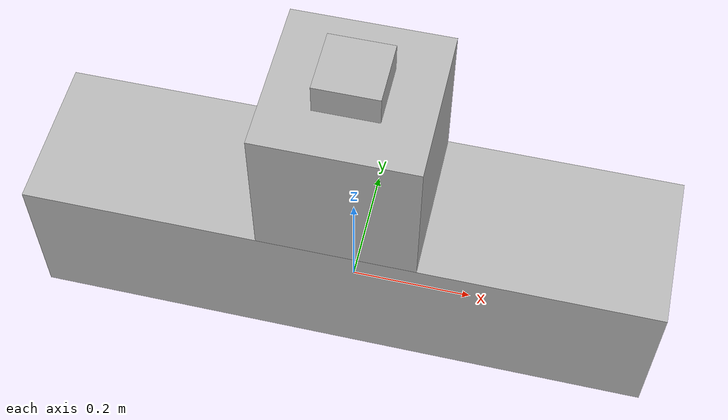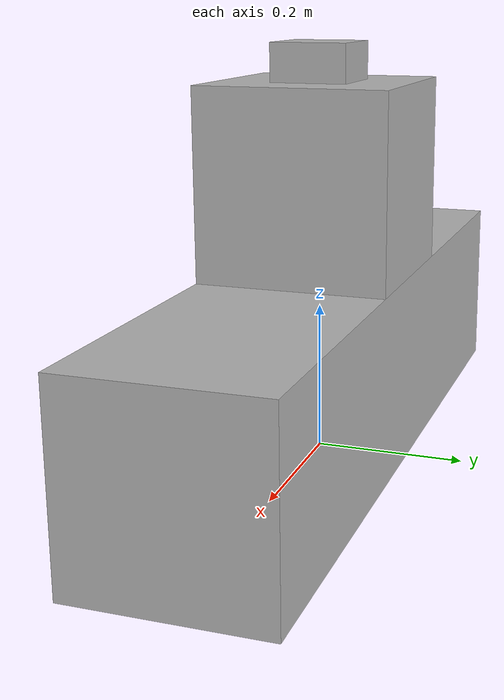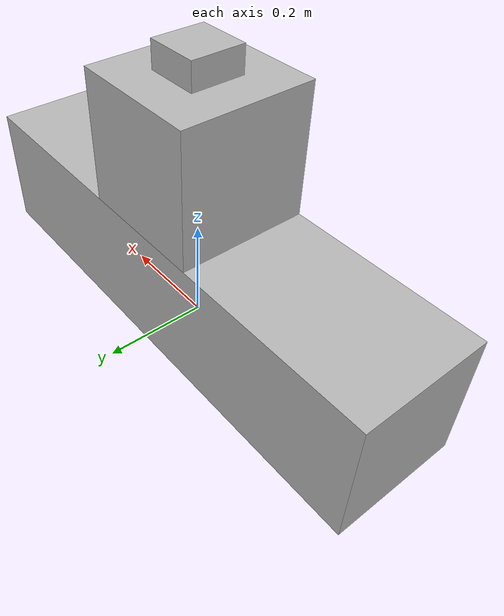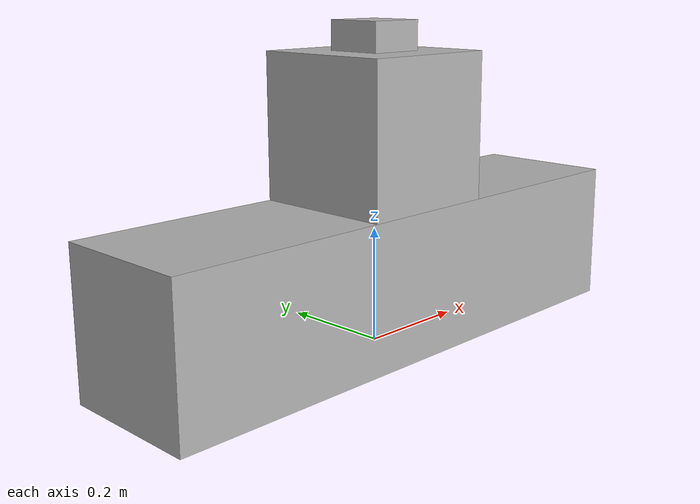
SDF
<sdf version="1.8">
  <world name="simple_nested_model">

    <!-- An articulated model -->
    <model name="linky-on-rail">
      <pose>0 0 0.125 0 0 0</pose>

      <link name="rail">
        <collision name="rail-collision">
          <geometry>
            <box>
              <size>1 0.25 0.25</size>
            </box>
          </geometry>
        </collision>
        <visual name="rail-visual">
          <geometry>
            <box>
              <size>1 0.25 0.25</size>
            </box>
          </geometry>
        </visual>
      </link>

      <joint name="rail-model" type="prismatic">
        <pose relative_to="rail">0 0 0 0 0 0</pose>
        <parent>rail</parent>
        <!-- A link in a nested model -->
        <child>inner::base_link</child>
        <axis>
          <xyz>1 0 0</xyz>
          <limit>
            <lower>-0.5</lower>
            <upper>0.5</upper>
          </limit>
        </axis>
      </joint>

      <!-- models can be composed of other models -->
      <model name="inner">
        <!-- w.r.t outer model. This offsets the base-link -->
        <pose>0 0 0.25 0 0 0</pose>
        <link name="base_link">
          <collision name="base_link-collision">
            <geometry>
              <box>
                <size>0.25 0.25 0.25</size>
              </box>
            </geometry>
          </collision>
          <visual name="base_link-visual">
            <geometry>
              <box>
                <size>0.25 0.25 0.25</size>
              </box>
            </geometry>
          </visual>
        </link>
        <joint name="base_link-child_link" type="revolute">
          <pose relative_to="base_link">
            0 0 0.125 0 0 0
          </pose>
          <parent>base_link</parent>
          <child>child_link</child>
          <axis>
            <xyz>0 0 1</xyz>
            <limit>
              <lower>-3.14</lower>
              <upper>3.14</upper>
            </limit>
          </axis>
        </joint>
        <link name="child_link">
          <pose>0 0 0.125 0 0 0</pose>
          <collision name="child_link-collision">
            <geometry>
              <box>
                <size>0.1 0.1 0.1</size>
              </box>
            </geometry>
          </collision>
          <visual name="child_link-visual">
            <geometry>
              <box>
                <size>0.1 0.1 0.1</size>
              </box>
            </geometry>
          </visual>
        </link>
      </model>
    </model>
  </world>
</sdf>
